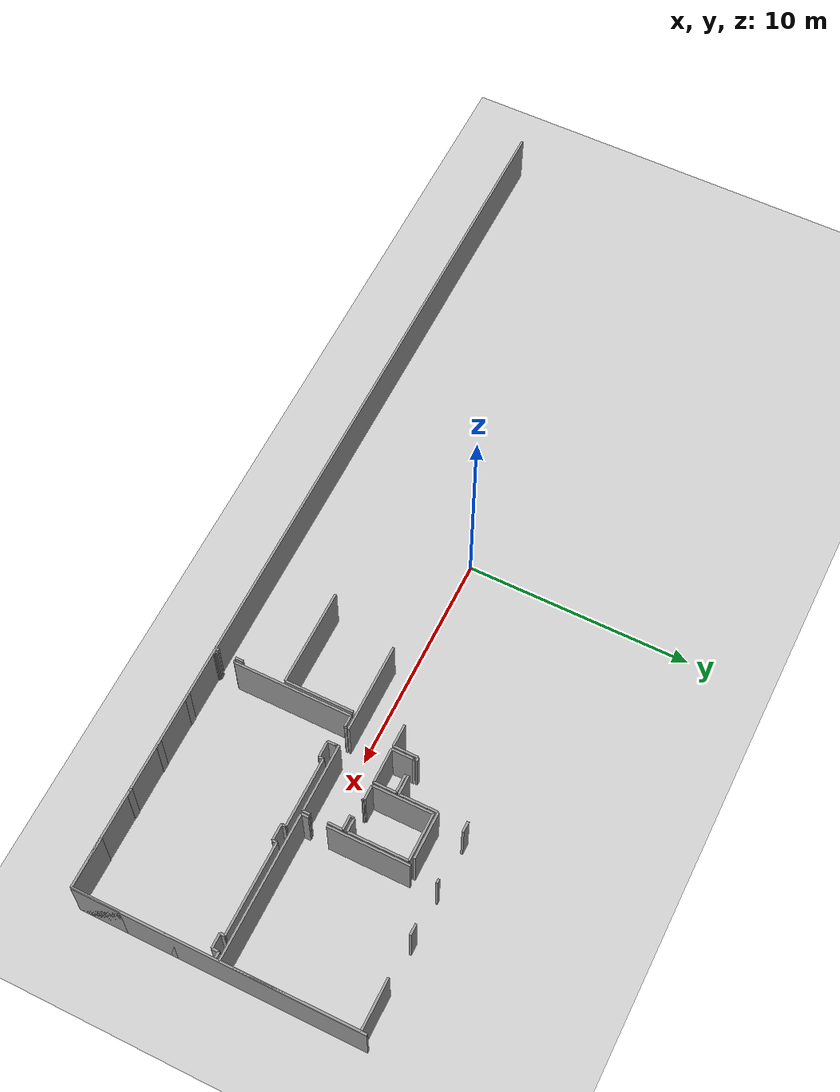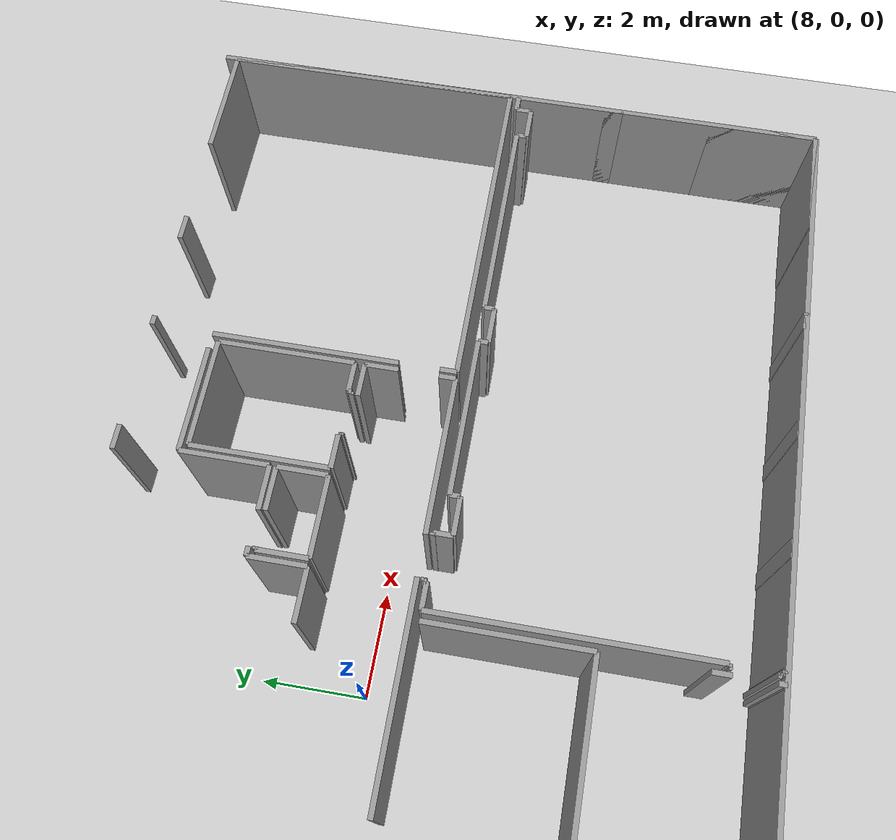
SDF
<sdf version="1.6">
 <world name="default">
  <model name="ground_plane">
   <static>1</static>
   <link name="link">
    <collision name="collision">
     <geometry><plane><normal>0 0 1</normal><size>100 100</size></plane></geometry>
     <surface><friction><ode><mu>100</mu><mu2>50</mu2></ode></friction></surface>
    </collision>
    <visual name="visual">
     <cast_shadows>0</cast_shadows>
     <geometry><plane><normal>0 0 1</normal><size>100 100</size></plane></geometry>
     <material>
      <script><uri>file://media/materials/scripts/gazebo.material</uri><name>Gazebo/Grey</name></script>
     </material>
    </visual>
   </link>
  </model>
  <model name="0510025537_Layout1_PLAN1">
   <static>1</static>
   <link name="Wall_243">
    <collision name="Wall_243_Collision">
     <geometry><box><size>0.354197115079 0.1 2.5</size></box></geometry>
     <pose>0.17709855754 0 1.25 0 0 0</pose>
    </collision>
    <visual name="Wall_243_Visual">
     <pose>0.17709855754 0 1.25 0 0 0</pose>
     <geometry><box><size>0.354197115079 0.1 2.5</size></box></geometry>
     <material>
      <script><uri>file://media/materials/scripts/gazebo.material</uri><name>Gazebo/Grey</name></script>
      <ambient>1 1 1 1</ambient>
     </material>
    </visual>
    <pose>29.4905636398 -11.3620003813 0 0 0 -1.57079632679</pose>
   </link>
   <link name="Wall_244">
    <collision name="Wall_244_Collision">
     <geometry><box><size>0.148757704772 0.1 2.5</size></box></geometry>
     <pose>0.0743788523861 0 1.25 0 0 0</pose>
    </collision>
    <visual name="Wall_244_Visual">
     <pose>0.0743788523861 0 1.25 0 0 0</pose>
     <geometry><box><size>0.148757704772 0.1 2.5</size></box></geometry>
     <material>
      <script><uri>file://media/materials/scripts/gazebo.material</uri><name>Gazebo/Grey</name></script>
      <ambient>1 1 1 1</ambient>
     </material>
    </visual>
    <pose>29.4905636398 -12.4839423016 0 0 0 -1.57079632679</pose>
   </link>
   <link name="Wall_245">
    <collision name="Wall_245_Collision">
     <geometry><box><size>0.0817182436297 0.1 2.5</size></box></geometry>
     <pose>0.0408591218148 0 1.25 0 0 0</pose>
    </collision>
    <visual name="Wall_245_Visual">
     <pose>0.0408591218148 0 1.25 0 0 0</pose>
     <geometry><box><size>0.0817182436297 0.1 2.5</size></box></geometry>
     <material>
      <script><uri>file://media/materials/scripts/gazebo.material</uri><name>Gazebo/Grey</name></script>
      <ambient>1 1 1 1</ambient>
     </material>
    </visual>
    <pose>29.4905636398 -12.6327000064 0 0 0 3.14159265359</pose>
   </link>
   <link name="Wall_254">
    <collision name="Wall_254_Collision">
     <geometry><box><size>0.508928004067 0.1 2.5</size></box></geometry>
     <pose>0.254464002033 0 1.25 0 0 0</pose>
    </collision>
    <visual name="Wall_254_Visual">
     <pose>0.254464002033 0 1.25 0 0 0</pose>
     <geometry><box><size>0.508928004067 0.1 2.5</size></box></geometry>
     <material>
      <script><uri>file://media/materials/scripts/gazebo.material</uri><name>Gazebo/Grey</name></script>
      <ambient>1 1 1 1</ambient>
     </material>
    </visual>
    <pose>29.6790366652 -6.37496346191 0 0 0 0.0</pose>
   </link>
   <link name="Wall_255">
    <collision name="Wall_255_Collision">
     <geometry><box><size>0.0549660036856 0.1 2.5</size></box></geometry>
     <pose>0.0274830018428 0 1.25 0 0 0</pose>
    </collision>
    <visual name="Wall_255_Visual">
     <pose>0.0274830018428 0 1.25 0 0 0</pose>
     <geometry><box><size>0.0549660036856 0.1 2.5</size></box></geometry>
     <material>
      <script><uri>file://media/materials/scripts/gazebo.material</uri><name>Gazebo/Grey</name></script>
      <ambient>1 1 1 1</ambient>
     </material>
    </visual>
    <pose>30.1879646693 -6.37496346191 0 0 0 1.57079632679</pose>
   </link>
   <link name="Wall_256">
    <collision name="Wall_256_Collision">
     <geometry><box><size>0.0596682976425 0.1 2.5</size></box></geometry>
     <pose>0.0298341488213 0 1.25 0 0 0</pose>
    </collision>
    <visual name="Wall_256_Visual">
     <pose>0.0298341488213 0 1.25 0 0 0</pose>
     <geometry><box><size>0.0596682976425 0.1 2.5</size></box></geometry>
     <material>
      <script><uri>file://media/materials/scripts/gazebo.material</uri><name>Gazebo/Grey</name></script>
      <ambient>1 1 1 1</ambient>
     </material>
    </visual>
    <pose>30.1879646693 -6.31999745822 0 0 0 0.0</pose>
   </link>
   <link name="Wall_257">
    <collision name="Wall_257_Collision">
     <geometry><box><size>0.0533773908623 0.1 2.5</size></box></geometry>
     <pose>0.0266886954311 0 1.25 0 0 0</pose>
    </collision>
    <visual name="Wall_257_Visual">
     <pose>0.0266886954311 0 1.25 0 0 0</pose>
     <geometry><box><size>0.0533773908623 0.1 2.5</size></box></geometry>
     <material>
      <script><uri>file://media/materials/scripts/gazebo.material</uri><name>Gazebo/Grey</name></script>
      <ambient>1 1 1 1</ambient>
     </material>
    </visual>
    <pose>31.0141704264 -6.31999745822 0 0 0 0.0</pose>
   </link>
   <link name="Wall_258">
    <collision name="Wall_258_Collision">
     <geometry><box><size>0.364427781661 0.1 2.5</size></box></geometry>
     <pose>0.182213890831 0 1.25 0 0 0</pose>
    </collision>
    <visual name="Wall_258_Visual">
     <pose>0.182213890831 0 1.25 0 0 0</pose>
     <geometry><box><size>0.364427781661 0.1 2.5</size></box></geometry>
     <material>
      <script><uri>file://media/materials/scripts/gazebo.material</uri><name>Gazebo/Grey</name></script>
      <ambient>1 1 1 1</ambient>
     </material>
    </visual>
    <pose>31.0675478172 -6.31999745822 0 0 0 -1.57079632679</pose>
   </link>
   <link name="Wall_259">
    <collision name="Wall_259_Collision">
     <geometry><box><size>0.737942428671 0.1 2.5</size></box></geometry>
     <pose>0.368971214336 0 1.25 0 0 0</pose>
    </collision>
    <visual name="Wall_259_Visual">
     <pose>0.368971214336 0 1.25 0 0 0</pose>
     <geometry><box><size>0.737942428671 0.1 2.5</size></box></geometry>
     <material>
      <script><uri>file://media/materials/scripts/gazebo.material</uri><name>Gazebo/Grey</name></script>
      <ambient>1 1 1 1</ambient>
     </material>
    </visual>
    <pose>31.0675478172 -6.68442523988 0 0 0 0.0</pose>
   </link>
   <link name="Wall_260">
    <collision name="Wall_260_Collision">
     <geometry><box><size>0.197496346191 0.1 2.5</size></box></geometry>
     <pose>0.0987481730953 0 1.25 0 0 0</pose>
    </collision>
    <visual name="Wall_260_Visual">
     <pose>0.0987481730953 0 1.25 0 0 0</pose>
     <geometry><box><size>0.197496346191 0.1 2.5</size></box></geometry>
     <material>
      <script><uri>file://media/materials/scripts/gazebo.material</uri><name>Gazebo/Grey</name></script>
      <ambient>1 1 1 1</ambient>
     </material>
    </visual>
    <pose>31.8054902459 -6.68442523988 0 0 0 1.57079632679</pose>
   </link>
   <link name="Wall_261">
    <collision name="Wall_261_Collision">
     <geometry><box><size>3.11190188727 0.1 2.5</size></box></geometry>
     <pose>1.55595094364 0 1.25 0 0 0</pose>
    </collision>
    <visual name="Wall_261_Visual">
     <pose>1.55595094364 0 1.25 0 0 0</pose>
     <geometry><box><size>3.11190188727 0.1 2.5</size></box></geometry>
     <material>
      <script><uri>file://media/materials/scripts/gazebo.material</uri><name>Gazebo/Grey</name></script>
      <ambient>1 1 1 1</ambient>
     </material>
    </visual>
    <pose>31.8054902459 -6.48692889369 0 0 0 0.0</pose>
   </link>
   <link name="Wall_262">
    <collision name="Wall_262_Collision">
     <geometry><box><size>0.191141894897 0.1 2.5</size></box></geometry>
     <pose>0.0955709474487 0 1.25 0 0 0</pose>
    </collision>
    <visual name="Wall_262_Visual">
     <pose>0.0955709474487 0 1.25 0 0 0</pose>
     <geometry><box><size>0.191141894897 0.1 2.5</size></box></geometry>
     <material>
      <script><uri>file://media/materials/scripts/gazebo.material</uri><name>Gazebo/Grey</name></script>
      <ambient>1 1 1 1</ambient>
     </material>
    </visual>
    <pose>34.9173921332 -6.48692889369 0 0 0 -1.57079632679</pose>
   </link>
   <link name="Wall_263">
    <collision name="Wall_263_Collision">
     <geometry><box><size>0.737370528055 0.1 2.5</size></box></geometry>
     <pose>0.368685264027 0 1.25 0 0 0</pose>
    </collision>
    <visual name="Wall_263_Visual">
     <pose>0.368685264027 0 1.25 0 0 0</pose>
     <geometry><box><size>0.737370528055 0.1 2.5</size></box></geometry>
     <material>
      <script><uri>file://media/materials/scripts/gazebo.material</uri><name>Gazebo/Grey</name></script>
      <ambient>1 1 1 1</ambient>
     </material>
    </visual>
    <pose>34.9173921332 -6.67807078859 0 0 0 0.0</pose>
   </link>
   <link name="Wall_264">
    <collision name="Wall_264_Collision">
     <geometry><box><size>0.194763932134 0.1 2.5</size></box></geometry>
     <pose>0.0973819660672 0 1.25 0 0 0</pose>
    </collision>
    <visual name="Wall_264_Visual">
     <pose>0.0973819660672 0 1.25 0 0 0</pose>
     <geometry><box><size>0.194763932134 0.1 2.5</size></box></geometry>
     <material>
      <script><uri>file://media/materials/scripts/gazebo.material</uri><name>Gazebo/Grey</name></script>
      <ambient>1 1 1 1</ambient>
     </material>
    </visual>
    <pose>35.6547626612 -6.67807078859 0 0 0 1.57079632679</pose>
   </link>
   <link name="Wall_265">
    <collision name="Wall_265_Collision">
     <geometry><box><size>4.1130456885 0.1 2.5</size></box></geometry>
     <pose>2.05652284425 0 1.25 0 0 0</pose>
    </collision>
    <visual name="Wall_265_Visual">
     <pose>2.05652284425 0 1.25 0 0 0</pose>
     <geometry><box><size>4.1130456885 0.1 2.5</size></box></geometry>
     <material>
      <script><uri>file://media/materials/scripts/gazebo.material</uri><name>Gazebo/Grey</name></script>
      <ambient>1 1 1 1</ambient>
     </material>
    </visual>
    <pose>35.6547626612 -6.48330685645 0 0 0 0.0</pose>
   </link>
   <link name="Wall_266">
    <collision name="Wall_266_Collision">
     <geometry><box><size>0.204104975535 0.1 2.5</size></box></geometry>
     <pose>0.102052487768 0 1.25 0 0 0</pose>
    </collision>
    <visual name="Wall_266_Visual">
     <pose>0.102052487768 0 1.25 0 0 0</pose>
     <geometry><box><size>0.204104975535 0.1 2.5</size></box></geometry>
     <material>
      <script><uri>file://media/materials/scripts/gazebo.material</uri><name>Gazebo/Grey</name></script>
      <ambient>1 1 1 1</ambient>
     </material>
    </visual>
    <pose>39.7678083497 -6.48330685645 0 0 0 -1.57079632679</pose>
   </link>
   <link name="Wall_267">
    <collision name="Wall_267_Collision">
     <geometry><box><size>0.643960094046 0.1 2.5</size></box></geometry>
     <pose>0.321980047023 0 1.25 0 0 0</pose>
    </collision>
    <visual name="Wall_267_Visual">
     <pose>0.321980047023 0 1.25 0 0 0</pose>
     <geometry><box><size>0.643960094046 0.1 2.5</size></box></geometry>
     <material>
      <script><uri>file://media/materials/scripts/gazebo.material</uri><name>Gazebo/Grey</name></script>
      <ambient>1 1 1 1</ambient>
     </material>
    </visual>
    <pose>39.7678083497 -6.68741183199 0 0 0 0.0</pose>
   </link>
   <link name="Wall_268">
    <collision name="Wall_268_Collision">
     <geometry><box><size>0.307746076126 0.1 2.5</size></box></geometry>
     <pose>0.153873038063 0 1.25 0 0 0</pose>
    </collision>
    <visual name="Wall_268_Visual">
     <pose>0.153873038063 0 1.25 0 0 0</pose>
     <geometry><box><size>0.307746076126 0.1 2.5</size></box></geometry>
     <material>
      <script><uri>file://media/materials/scripts/gazebo.material</uri><name>Gazebo/Grey</name></script>
      <ambient>1 1 1 1</ambient>
     </material>
    </visual>
    <pose>40.4117684438 -6.68741183199 0 0 0 1.57079632679</pose>
   </link>
   <link name="Wall_269">
    <collision name="Wall_269_Collision">
     <geometry><box><size>0.313846349368 0.1 2.5</size></box></geometry>
     <pose>0.156923174684 0 1.25 0 0 0</pose>
    </collision>
    <visual name="Wall_269_Visual">
     <pose>0.156923174684 0 1.25 0 0 0</pose>
     <geometry><box><size>0.313846349368 0.1 2.5</size></box></geometry>
     <material>
      <script><uri>file://media/materials/scripts/gazebo.material</uri><name>Gazebo/Grey</name></script>
      <ambient>1 1 1 1</ambient>
     </material>
    </visual>
    <pose>40.4117684438 -6.37966575586 0 0 0 0.0</pose>
   </link>
   <link name="Wall_270">
    <collision name="Wall_270_Collision">
     <geometry><box><size>0.379932642816 0.1 2.5</size></box></geometry>
     <pose>0.189966321408 0 1.25 0 0 0</pose>
    </collision>
    <visual name="Wall_270_Visual">
     <pose>0.189966321408 0 1.25 0 0 0</pose>
     <geometry><box><size>0.379932642816 0.1 2.5</size></box></geometry>
     <material>
      <script><uri>file://media/materials/scripts/gazebo.material</uri><name>Gazebo/Grey</name></script>
      <ambient>1 1 1 1</ambient>
     </material>
    </visual>
    <pose>40.7256147932 -8.22055029548 0 0 0 -1.57079632679</pose>
   </link>
   <link name="Wall_271">
    <collision name="Wall_271_Collision">
     <geometry><box><size>2.15854355976 0.1 2.5</size></box></geometry>
     <pose>1.07927177988 0 1.25 0 0 0</pose>
    </collision>
    <visual name="Wall_271_Visual">
     <pose>1.07927177988 0 1.25 0 0 0</pose>
     <geometry><box><size>2.15854355976 0.1 2.5</size></box></geometry>
     <material>
      <script><uri>file://media/materials/scripts/gazebo.material</uri><name>Gazebo/Grey</name></script>
      <ambient>1 1 1 1</ambient>
     </material>
    </visual>
    <pose>40.7256147932 -10.4599224757 0 0 0 -1.57079632679</pose>
   </link>
   <link name="Wall_272">
    <collision name="Wall_272_Collision">
     <geometry><box><size>2.21338247442 0.1 2.5</size></box></geometry>
     <pose>1.10669123721 0 1.25 0 0 0</pose>
    </collision>
    <visual name="Wall_272_Visual">
     <pose>1.10669123721 0 1.25 0 0 0</pose>
     <geometry><box><size>2.21338247442 0.1 2.5</size></box></geometry>
     <material>
      <script><uri>file://media/materials/scripts/gazebo.material</uri><name>Gazebo/Grey</name></script>
      <ambient>1 1 1 1</ambient>
     </material>
    </visual>
    <pose>40.7256147932 -12.6184660355 0 0 0 3.14159265359</pose>
   </link>
   <link name="Wall_273">
    <collision name="Wall_273_Collision">
     <geometry><box><size>0.352862680308 0.1 2.5</size></box></geometry>
     <pose>0.176431340154 0 1.25 0 0 0</pose>
    </collision>
    <visual name="Wall_273_Visual">
     <pose>0.176431340154 0 1.25 0 0 0</pose>
     <geometry><box><size>0.352862680308 0.1 2.5</size></box></geometry>
     <material>
      <script><uri>file://media/materials/scripts/gazebo.material</uri><name>Gazebo/Grey</name></script>
      <ambient>1 1 1 1</ambient>
     </material>
    </visual>
    <pose>36.5882315562 -12.6184660355 0 0 0 3.14159265359</pose>
   </link>
   <link name="Wall_274">
    <collision name="Wall_274_Collision">
     <geometry><box><size>0.359916121243 0.1 2.5</size></box></geometry>
     <pose>0.179958060621 0 1.25 0 0 0</pose>
    </collision>
    <visual name="Wall_274_Visual">
     <pose>0.179958060621 0 1.25 0 0 0</pose>
     <geometry><box><size>0.359916121243 0.1 2.5</size></box></geometry>
     <material>
      <script><uri>file://media/materials/scripts/gazebo.material</uri><name>Gazebo/Grey</name></script>
      <ambient>1 1 1 1</ambient>
     </material>
    </visual>
    <pose>34.3263010739 -12.6184660355 0 0 0 3.14159265359</pose>
   </link>
   <link name="Wall_275">
    <collision name="Wall_275_Collision">
     <geometry><box><size>0.356039905954 0.1 2.5</size></box></geometry>
     <pose>0.178019952977 0 1.25 0 0 0</pose>
    </collision>
    <visual name="Wall_275_Visual">
     <pose>0.178019952977 0 1.25 0 0 0</pose>
     <geometry><box><size>0.356039905954 0.1 2.5</size></box></geometry>
     <material>
      <script><uri>file://media/materials/scripts/gazebo.material</uri><name>Gazebo/Grey</name></script>
      <ambient>1 1 1 1</ambient>
     </material>
    </visual>
    <pose>32.0414945669 -12.6184660355 0 0 0 3.14159265359</pose>
   </link>
   <link name="Wall_276">
    <collision name="Wall_276_Collision">
     <geometry><box><size>0.0927749888797 0.1 2.5</size></box></geometry>
     <pose>0.0463874944399 0 1.25 0 0 0</pose>
    </collision>
    <visual name="Wall_276_Visual">
     <pose>0.0463874944399 0 1.25 0 0 0</pose>
     <geometry><box><size>0.0927749888797 0.1 2.5</size></box></geometry>
     <material>
      <script><uri>file://media/materials/scripts/gazebo.material</uri><name>Gazebo/Grey</name></script>
      <ambient>1 1 1 1</ambient>
     </material>
    </visual>
    <pose>29.7672999936 -12.6184660355 0 0 0 3.14159265359</pose>
   </link>
   <link name="Wall_277">
    <collision name="Wall_277_Collision">
     <geometry><box><size>0.0827349558366 0.1 2.5</size></box></geometry>
     <pose>0.0413674779183 0 1.25 0 0 0</pose>
    </collision>
    <visual name="Wall_277_Visual">
     <pose>0.0413674779183 0 1.25 0 0 0</pose>
     <geometry><box><size>0.0827349558366 0.1 2.5</size></box></geometry>
     <material>
      <script><uri>file://media/materials/scripts/gazebo.material</uri><name>Gazebo/Grey</name></script>
      <ambient>1 1 1 1</ambient>
     </material>
    </visual>
    <pose>29.6745250048 -12.6184660355 0 0 0 1.57079632679</pose>
   </link>
   <link name="Wall_278">
    <collision name="Wall_278_Collision">
     <geometry><box><size>0.0519158670649 0.1 2.5</size></box></geometry>
     <pose>0.0259579335324 0 1.25 0 0 0</pose>
    </collision>
    <visual name="Wall_278_Visual">
     <pose>0.0259579335324 0 1.25 0 0 0</pose>
     <geometry><box><size>0.0519158670649 0.1 2.5</size></box></geometry>
     <material>
      <script><uri>file://media/materials/scripts/gazebo.material</uri><name>Gazebo/Grey</name></script>
      <ambient>1 1 1 1</ambient>
     </material>
    </visual>
    <pose>29.6745250048 -12.5357310796 0 0 0 3.14159265359</pose>
   </link>
   <link name="Wall_279">
    <collision name="Wall_279_Collision">
     <geometry><box><size>0.0669123721167 0.1 2.5</size></box></geometry>
     <pose>0.0334561860583 0 1.25 0 0 0</pose>
    </collision>
    <visual name="Wall_279_Visual">
     <pose>0.0334561860583 0 1.25 0 0 0</pose>
     <geometry><box><size>0.0669123721167 0.1 2.5</size></box></geometry>
     <material>
      <script><uri>file://media/materials/scripts/gazebo.material</uri><name>Gazebo/Grey</name></script>
      <ambient>1 1 1 1</ambient>
     </material>
    </visual>
    <pose>29.6226091377 -12.5357310796 0 0 0 1.57079632679</pose>
   </link>
   <link name="Wall_280">
    <collision name="Wall_280_Collision">
     <geometry><box><size>0.0560462604054 0.1 2.5</size></box></geometry>
     <pose>0.0280231302027 0 1.25 0 0 0</pose>
    </collision>
    <visual name="Wall_280_Visual">
     <pose>0.0280231302027 0 1.25 0 0 0</pose>
     <geometry><box><size>0.0560462604054 0.1 2.5</size></box></geometry>
     <material>
      <script><uri>file://media/materials/scripts/gazebo.material</uri><name>Gazebo/Grey</name></script>
      <ambient>1 1 1 1</ambient>
     </material>
    </visual>
    <pose>29.6226091377 -11.7054584737 0 0 0 1.57079632679</pose>
   </link>
   <link name="Wall_281">
    <collision name="Wall_281_Collision">
     <geometry><box><size>0.0531867573235 0.1 2.5</size></box></geometry>
     <pose>0.0265933786618 0 1.25 0 0 0</pose>
    </collision>
    <visual name="Wall_281_Visual">
     <pose>0.0265933786618 0 1.25 0 0 0</pose>
     <geometry><box><size>0.0531867573235 0.1 2.5</size></box></geometry>
     <material>
      <script><uri>file://media/materials/scripts/gazebo.material</uri><name>Gazebo/Grey</name></script>
      <ambient>1 1 1 1</ambient>
     </material>
    </visual>
    <pose>29.6226091377 -11.6494122133 0 0 0 0.0</pose>
   </link>
   <link name="Wall_282">
    <collision name="Wall_282_Collision">
     <geometry><box><size>5.27444974696 0.1 2.5</size></box></geometry>
     <pose>2.63722487348 0 1.25 0 0 0</pose>
    </collision>
    <visual name="Wall_282_Visual">
     <pose>2.63722487348 0 1.25 0 0 0</pose>
     <geometry><box><size>5.27444974696 0.1 2.5</size></box></geometry>
     <material>
      <script><uri>file://media/materials/scripts/gazebo.material</uri><name>Gazebo/Grey</name></script>
      <ambient>1 1 1 1</ambient>
     </material>
    </visual>
    <pose>29.675795895 -11.6494122133 0 0 0 1.57018189865</pose>
   </link>
   <link name="Wall_290">
    <collision name="Wall_290_Collision">
     <geometry><box><size>3.06157463303 0.1 2.5</size></box></geometry>
     <pose>1.53078731652 0 1.25 0 0 0</pose>
    </collision>
    <visual name="Wall_290_Visual">
     <pose>1.53078731652 0 1.25 0 0 0</pose>
     <geometry><box><size>3.06157463303 0.1 2.5</size></box></geometry>
     <material>
      <script><uri>file://media/materials/scripts/gazebo.material</uri><name>Gazebo/Grey</name></script>
      <ambient>1 1 1 1</ambient>
     </material>
    </visual>
    <pose>29.4942492216 -6.37229459236 0 0 0 -1.57079632679</pose>
   </link>
   <link name="Wall_291">
    <collision name="Wall_291_Collision">
     <geometry><box><size>4.36716578958 0.1 2.5</size></box></geometry>
     <pose>2.18358289479 0 1.25 0 0 0</pose>
    </collision>
    <visual name="Wall_291_Visual">
     <pose>2.18358289479 0 1.25 0 0 0</pose>
     <geometry><box><size>4.36716578958 0.1 2.5</size></box></geometry>
     <material>
      <script><uri>file://media/materials/scripts/gazebo.material</uri><name>Gazebo/Grey</name></script>
      <ambient>1 1 1 1</ambient>
     </material>
    </visual>
    <pose>29.4942492216 -9.43386922539 0 0 0 3.13999209622</pose>
   </link>
   <link name="Wall_292">
    <collision name="Wall_292_Collision">
     <geometry><box><size>2.6665882951 0.1 2.5</size></box></geometry>
     <pose>1.33329414755 0 1.25 0 0 0</pose>
    </collision>
    <visual name="Wall_292_Visual">
     <pose>1.33329414755 0 1.25 0 0 0</pose>
     <geometry><box><size>2.6665882951 0.1 2.5</size></box></geometry>
     <material>
      <script><uri>file://media/materials/scripts/gazebo.material</uri><name>Gazebo/Grey</name></script>
      <ambient>1 1 1 1</ambient>
     </material>
    </visual>
    <pose>31.9343585181 -4.27596111076 0 0 0 1.57079632679</pose>
   </link>
   <link name="Wall_293">
    <collision name="Wall_293_Collision">
     <geometry><box><size>2.13407892229 0.1 2.5</size></box></geometry>
     <pose>1.06703946114 0 1.25 0 0 0</pose>
    </collision>
    <visual name="Wall_293_Visual">
     <pose>1.06703946114 0 1.25 0 0 0</pose>
     <geometry><box><size>2.13407892229 0.1 2.5</size></box></geometry>
     <material>
      <script><uri>file://media/materials/scripts/gazebo.material</uri><name>Gazebo/Grey</name></script>
      <ambient>1 1 1 1</ambient>
     </material>
    </visual>
    <pose>31.9343585181 -1.60937281566 0 0 0 0.0</pose>
   </link>
   <link name="Wall_294">
    <collision name="Wall_294_Collision">
     <geometry><box><size>2.65769206329 0.1 2.5</size></box></geometry>
     <pose>1.32884603165 0 1.25 0 0 0</pose>
    </collision>
    <visual name="Wall_294_Visual">
     <pose>1.32884603165 0 1.25 0 0 0</pose>
     <geometry><box><size>2.65769206329 0.1 2.5</size></box></geometry>
     <material>
      <script><uri>file://media/materials/scripts/gazebo.material</uri><name>Gazebo/Grey</name></script>
      <ambient>1 1 1 1</ambient>
     </material>
    </visual>
    <pose>34.0684374404 -1.60937281566 0 0 0 -1.57079632679</pose>
   </link>
   <link name="Wall_295">
    <collision name="Wall_295_Collision">
     <geometry><box><size>0.588231556205 0.1 2.5</size></box></geometry>
     <pose>0.294115778103 0 1.25 0 0 0</pose>
    </collision>
    <visual name="Wall_295_Visual">
     <pose>0.294115778103 0 1.25 0 0 0</pose>
     <geometry><box><size>0.588231556205 0.1 2.5</size></box></geometry>
     <material>
      <script><uri>file://media/materials/scripts/gazebo.material</uri><name>Gazebo/Grey</name></script>
      <ambient>1 1 1 1</ambient>
     </material>
    </visual>
    <pose>34.0684374404 -4.26706487895 0 0 0 3.14159265359</pose>
   </link>
   <link name="Wall_296">
    <collision name="Wall_296_Collision">
     <geometry><box><size>0.0596682976425 0.1 2.5</size></box></geometry>
     <pose>0.0298341488212 0 1.25 0 0 0</pose>
    </collision>
    <visual name="Wall_296_Visual">
     <pose>0.0298341488212 0 1.25 0 0 0</pose>
     <geometry><box><size>0.0596682976425 0.1 2.5</size></box></geometry>
     <material>
      <script><uri>file://media/materials/scripts/gazebo.material</uri><name>Gazebo/Grey</name></script>
      <ambient>1 1 1 1</ambient>
     </material>
    </visual>
    <pose>33.4802058842 -4.26706487895 0 0 0 -1.57079632679</pose>
   </link>
   <link name="Wall_297">
    <collision name="Wall_297_Collision">
     <geometry><box><size>0.0597318421554 0.1 2.5</size></box></geometry>
     <pose>0.0298659210777 0 1.25 0 0 0</pose>
    </collision>
    <visual name="Wall_297_Visual">
     <pose>0.0298659210777 0 1.25 0 0 0</pose>
     <geometry><box><size>0.0597318421554 0.1 2.5</size></box></geometry>
     <material>
      <script><uri>file://media/materials/scripts/gazebo.material</uri><name>Gazebo/Grey</name></script>
      <ambient>1 1 1 1</ambient>
     </material>
    </visual>
    <pose>33.4802058842 -4.32673317659 0 0 0 3.14159265359</pose>
   </link>
   <link name="Wall_298">
    <collision name="Wall_298_Collision">
     <geometry><box><size>0.0486750969054 0.1 2.5</size></box></geometry>
     <pose>0.0243375484527 0 1.25 0 0 0</pose>
    </collision>
    <visual name="Wall_298_Visual">
     <pose>0.0243375484527 0 1.25 0 0 0</pose>
     <geometry><box><size>0.0486750969054 0.1 2.5</size></box></geometry>
     <material>
      <script><uri>file://media/materials/scripts/gazebo.material</uri><name>Gazebo/Grey</name></script>
      <ambient>1 1 1 1</ambient>
     </material>
    </visual>
    <pose>32.6449768063 -4.32673317659 0 0 0 3.14159265359</pose>
   </link>
   <link name="Wall_299">
    <collision name="Wall_299_Collision">
     <geometry><box><size>0.0535044798882 0.1 2.5</size></box></geometry>
     <pose>0.0267522399441 0 1.25 0 0 0</pose>
    </collision>
    <visual name="Wall_299_Visual">
     <pose>0.0267522399441 0 1.25 0 0 0</pose>
     <geometry><box><size>0.0535044798882 0.1 2.5</size></box></geometry>
     <material>
      <script><uri>file://media/materials/scripts/gazebo.material</uri><name>Gazebo/Grey</name></script>
      <ambient>1 1 1 1</ambient>
     </material>
    </visual>
    <pose>32.5963017093 -4.32673317659 0 0 0 1.57079632679</pose>
   </link>
   <link name="Wall_300">
    <collision name="Wall_300_Collision">
     <geometry><box><size>0.661948830704 0.1 2.5</size></box></geometry>
     <pose>0.330974415352 0 1.25 0 0 0</pose>
    </collision>
    <visual name="Wall_300_Visual">
     <pose>0.330974415352 0 1.25 0 0 0</pose>
     <geometry><box><size>0.661948830704 0.1 2.5</size></box></geometry>
     <material>
      <script><uri>file://media/materials/scripts/gazebo.material</uri><name>Gazebo/Grey</name></script>
      <ambient>1 1 1 1</ambient>
     </material>
    </visual>
    <pose>32.5963017093 -4.2732286967 0 0 0 -3.13746480913</pose>
   </link>
   <link name="Wall_306">
    <collision name="Wall_306_Collision">
     <geometry><box><size>0.975980174112 0.1 2.5</size></box></geometry>
     <pose>0.487990087056 0 1.25 0 0 0</pose>
    </collision>
    <visual name="Wall_306_Visual">
     <pose>0.487990087056 0 1.25 0 0 0</pose>
     <geometry><box><size>0.975980174112 0.1 2.5</size></box></geometry>
     <material>
      <script><uri>file://media/materials/scripts/gazebo.material</uri><name>Gazebo/Grey</name></script>
      <ambient>1 1 1 1</ambient>
     </material>
    </visual>
    <pose>30.2328906399 -4.27678718943 0 0 0 1.57079632679</pose>
   </link>
   <link name="Wall_307">
    <collision name="Wall_307_Collision">
     <geometry><box><size>0.0547753701468 0.1 2.5</size></box></geometry>
     <pose>0.0273876850734 0 1.25 0 0 0</pose>
    </collision>
    <visual name="Wall_307_Visual">
     <pose>0.0273876850734 0 1.25 0 0 0</pose>
     <geometry><box><size>0.0547753701468 0.1 2.5</size></box></geometry>
     <material>
      <script><uri>file://media/materials/scripts/gazebo.material</uri><name>Gazebo/Grey</name></script>
      <ambient>1 1 1 1</ambient>
     </material>
    </visual>
    <pose>30.2328906399 -3.30080701531 0 0 0 0.0</pose>
   </link>
   <link name="Wall_308">
    <collision name="Wall_308_Collision">
     <geometry><box><size>0.838152125564 0.1 2.5</size></box></geometry>
     <pose>0.419076062782 0 1.25 0 0 0</pose>
    </collision>
    <visual name="Wall_308_Visual">
     <pose>0.419076062782 0 1.25 0 0 0</pose>
     <geometry><box><size>0.838152125564 0.1 2.5</size></box></geometry>
     <material>
      <script><uri>file://media/materials/scripts/gazebo.material</uri><name>Gazebo/Grey</name></script>
      <ambient>1 1 1 1</ambient>
     </material>
    </visual>
    <pose>30.9583147995 -3.30080701531 0 0 0 0.0</pose>
   </link>
   <link name="Wall_309">
    <collision name="Wall_309_Collision">
     <geometry><box><size>0.971087246616 0.1 2.5</size></box></geometry>
     <pose>0.485543623308 0 1.25 0 0 0</pose>
    </collision>
    <visual name="Wall_309_Visual">
     <pose>0.485543623308 0 1.25 0 0 0</pose>
     <geometry><box><size>0.971087246616 0.1 2.5</size></box></geometry>
     <material>
      <script><uri>file://media/materials/scripts/gazebo.material</uri><name>Gazebo/Grey</name></script>
      <ambient>1 1 1 1</ambient>
     </material>
    </visual>
    <pose>31.7964669251 -3.30080701531 0 0 0 -1.57079632679</pose>
   </link>
   <link name="Wall_310">
    <collision name="Wall_310_Collision">
     <geometry><box><size>1.56358394093 0.1 2.5</size></box></geometry>
     <pose>0.781791970466 0 1.25 0 0 0</pose>
    </collision>
    <visual name="Wall_310_Visual">
     <pose>0.781791970466 0 1.25 0 0 0</pose>
     <geometry><box><size>1.56358394093 0.1 2.5</size></box></geometry>
     <material>
      <script><uri>file://media/materials/scripts/gazebo.material</uri><name>Gazebo/Grey</name></script>
      <ambient>1 1 1 1</ambient>
     </material>
    </visual>
    <pose>31.7964669251 -4.27189426193 0 0 0 -3.13846334575</pose>
   </link>
   <link name="Wall_315">
    <collision name="Wall_315_Collision">
     <geometry><box><size>0.480460062274 0.1 2.5</size></box></geometry>
     <pose>0.240230031137 0 1.25 0 0 0</pose>
    </collision>
    <visual name="Wall_315_Visual">
     <pose>0.240230031137 0 1.25 0 0 0</pose>
     <geometry><box><size>0.480460062274 0.1 2.5</size></box></geometry>
     <material>
      <script><uri>file://media/materials/scripts/gazebo.material</uri><name>Gazebo/Grey</name></script>
      <ambient>1 1 1 1</ambient>
     </material>
    </visual>
    <pose>31.6248331957 -0.262368939442 0 0 0 0.0</pose>
   </link>
   <link name="Wall_316">
    <collision name="Wall_316_Collision">
     <geometry><box><size>2.10186185423 0.1 2.5</size></box></geometry>
     <pose>1.05093092711 0 1.25 0 0 0</pose>
    </collision>
    <visual name="Wall_316_Visual">
     <pose>1.05093092711 0 1.25 0 0 0</pose>
     <geometry><box><size>2.10186185423 0.1 2.5</size></box></geometry>
     <material>
      <script><uri>file://media/materials/scripts/gazebo.material</uri><name>Gazebo/Grey</name></script>
      <ambient>1 1 1 1</ambient>
     </material>
    </visual>
    <pose>33.9036029739 -1.46542543051 0 0 0 3.14159265359</pose>
   </link>
   <link name="Wall_317">
    <collision name="Wall_317_Collision">
     <geometry><box><size>1.71051661689 0.1 2.5</size></box></geometry>
     <pose>0.855258308445 0 1.25 0 0 0</pose>
    </collision>
    <visual name="Wall_317_Visual">
     <pose>0.855258308445 0 1.25 0 0 0</pose>
     <geometry><box><size>1.71051661689 0.1 2.5</size></box></geometry>
     <material>
      <script><uri>file://media/materials/scripts/gazebo.material</uri><name>Gazebo/Grey</name></script>
      <ambient>1 1 1 1</ambient>
     </material>
    </visual>
    <pose>31.8017411197 -1.46542543051 0 0 0 -1.57079632679</pose>
   </link>
   <link name="Wall_318">
    <collision name="Wall_318_Collision">
     <geometry><box><size>0.856071678211 0.1 2.5</size></box></geometry>
     <pose>0.428035839105 0 1.25 0 0 0</pose>
    </collision>
    <visual name="Wall_318_Visual">
     <pose>0.428035839105 0 1.25 0 0 0</pose>
     <geometry><box><size>0.856071678211 0.1 2.5</size></box></geometry>
     <material>
      <script><uri>file://media/materials/scripts/gazebo.material</uri><name>Gazebo/Grey</name></script>
      <ambient>1 1 1 1</ambient>
     </material>
    </visual>
    <pose>31.8017411197 -3.1759420474 0 0 0 3.14159265359</pose>
   </link>
   <link name="Wall_319">
    <collision name="Wall_319_Collision">
     <geometry><box><size>0.175764122768 0.1 2.5</size></box></geometry>
     <pose>0.087882061384 0 1.25 0 0 0</pose>
    </collision>
    <visual name="Wall_319_Visual">
     <pose>0.087882061384 0 1.25 0 0 0</pose>
     <geometry><box><size>0.175764122768 0.1 2.5</size></box></geometry>
     <material>
      <script><uri>file://media/materials/scripts/gazebo.material</uri><name>Gazebo/Grey</name></script>
      <ambient>1 1 1 1</ambient>
     </material>
    </visual>
    <pose>30.2713986147 -3.1759420474 0 0 0 3.14159265359</pose>
   </link>
   <link name="Wall_320">
    <collision name="Wall_320_Collision">
     <geometry><box><size>1.09970134079 0.1 2.5</size></box></geometry>
     <pose>0.549850670395 0 1.25 0 0 0</pose>
    </collision>
    <visual name="Wall_320_Visual">
     <pose>0.549850670395 0 1.25 0 0 0</pose>
     <geometry><box><size>1.09970134079 0.1 2.5</size></box></geometry>
     <material>
      <script><uri>file://media/materials/scripts/gazebo.material</uri><name>Gazebo/Grey</name></script>
      <ambient>1 1 1 1</ambient>
     </material>
    </visual>
    <pose>30.095634492 -3.1759420474 0 0 0 -1.57079632679</pose>
   </link>
   <link name="Wall_321">
    <collision name="Wall_321_Collision">
     <geometry><box><size>1.01391624833 0.1 2.5</size></box></geometry>
     <pose>0.506958124166 0 1.25 0 0 0</pose>
    </collision>
    <visual name="Wall_321_Visual">
     <pose>0.506958124166 0 1.25 0 0 0</pose>
     <geometry><box><size>1.01391624833 0.1 2.5</size></box></geometry>
     <material>
      <script><uri>file://media/materials/scripts/gazebo.material</uri><name>Gazebo/Grey</name></script>
      <ambient>1 1 1 1</ambient>
     </material>
    </visual>
    <pose>30.095634492 -4.27564338819 0 0 0 3.14159265359</pose>
   </link>
   <link name="Wall_325">
    <collision name="Wall_325_Collision">
     <geometry><box><size>0.32515727267 0.1 2.5</size></box></geometry>
     <pose>0.162578636335 0 1.25 0 0 0</pose>
    </collision>
    <visual name="Wall_325_Visual">
     <pose>0.162578636335 0 1.25 0 0 0</pose>
     <geometry><box><size>0.32515727267 0.1 2.5</size></box></geometry>
     <material>
      <script><uri>file://media/materials/scripts/gazebo.material</uri><name>Gazebo/Grey</name></script>
      <ambient>1 1 1 1</ambient>
     </material>
    </visual>
    <pose>34.208997903 -6.19748363729 0 0 0 1.57079632679</pose>
   </link>
   <link name="Wall_326">
    <collision name="Wall_326_Collision">
     <geometry><box><size>3.62081718244 0.1 2.5</size></box></geometry>
     <pose>1.81040859122 0 1.25 0 0 0</pose>
    </collision>
    <visual name="Wall_326_Visual">
     <pose>1.81040859122 0 1.25 0 0 0</pose>
     <geometry><box><size>3.62081718244 0.1 2.5</size></box></geometry>
     <material>
      <script><uri>file://media/materials/scripts/gazebo.material</uri><name>Gazebo/Grey</name></script>
      <ambient>1 1 1 1</ambient>
     </material>
    </visual>
    <pose>34.208997903 -5.08132426765 0 0 0 1.57079632679</pose>
   </link>
   <link name="Wall_327">
    <collision name="Wall_327_Collision">
     <geometry><box><size>0.182182118574 0.1 2.5</size></box></geometry>
     <pose>0.091091059287 0 1.25 0 0 0</pose>
    </collision>
    <visual name="Wall_327_Visual">
     <pose>0.091091059287 0 1.25 0 0 0</pose>
     <geometry><box><size>0.182182118574 0.1 2.5</size></box></geometry>
     <material>
      <script><uri>file://media/materials/scripts/gazebo.material</uri><name>Gazebo/Grey</name></script>
      <ambient>1 1 1 1</ambient>
     </material>
    </visual>
    <pose>34.208997903 -0.258422825189 0 0 0 0.0</pose>
   </link>
   <link name="Wall_328">
    <collision name="Wall_328_Collision">
     <geometry><box><size>0.505814322933 0.1 2.5</size></box></geometry>
     <pose>0.252907161467 0 1.25 0 0 0</pose>
    </collision>
    <visual name="Wall_328_Visual">
     <pose>0.252907161467 0 1.25 0 0 0</pose>
     <geometry><box><size>0.505814322933 0.1 2.5</size></box></geometry>
     <material>
      <script><uri>file://media/materials/scripts/gazebo.material</uri><name>Gazebo/Grey</name></script>
      <ambient>1 1 1 1</ambient>
     </material>
    </visual>
    <pose>36.1641354769 -0.258422825189 0 0 0 0.0</pose>
   </link>
   <link name="Wall_329">
    <collision name="Wall_329_Collision">
     <geometry><box><size>2.25252589439 0.1 2.5</size></box></geometry>
     <pose>1.12626294719 0 1.25 0 0 0</pose>
    </collision>
    <visual name="Wall_329_Visual">
     <pose>1.12626294719 0 1.25 0 0 0</pose>
     <geometry><box><size>2.25252589439 0.1 2.5</size></box></geometry>
     <material>
      <script><uri>file://media/materials/scripts/gazebo.material</uri><name>Gazebo/Grey</name></script>
      <ambient>1 1 1 1</ambient>
     </material>
    </visual>
    <pose>38.461714431 -0.258422825189 0 0 0 0.0</pose>
   </link>
   <link name="Wall_330">
    <collision name="Wall_330_Collision">
     <geometry><box><size>5.943508928 0.1 2.5</size></box></geometry>
     <pose>2.971754464 0 1.25 0 0 0</pose>
    </collision>
    <visual name="Wall_330_Visual">
     <pose>2.971754464 0 1.25 0 0 0</pose>
     <geometry><box><size>5.943508928 0.1 2.5</size></box></geometry>
     <material>
      <script><uri>file://media/materials/scripts/gazebo.material</uri><name>Gazebo/Grey</name></script>
      <ambient>1 1 1 1</ambient>
     </material>
    </visual>
    <pose>40.7142403253 -0.258422825189 0 0 0 -1.57079632679</pose>
   </link>
   <link name="Wall_331">
    <collision name="Wall_331_Collision">
     <geometry><box><size>6.50524394307 0.1 2.5</size></box></geometry>
     <pose>3.25262197153 0 1.25 0 0 0</pose>
    </collision>
    <visual name="Wall_331_Visual">
     <pose>3.25262197153 0 1.25 0 0 0</pose>
     <geometry><box><size>6.50524394307 0.1 2.5</size></box></geometry>
     <material>
      <script><uri>file://media/materials/scripts/gazebo.material</uri><name>Gazebo/Grey</name></script>
      <ambient>1 1 1 1</ambient>
     </material>
    </visual>
    <pose>40.7142403253 -6.20193175319 0 0 0 3.14090887965</pose>
   </link>
   <link name="Wall_396">
    <collision name="Wall_396_Collision">
     <geometry><box><size>0.654953294783 0.1 2.5</size></box></geometry>
     <pose>0.327476647391 0 1.25 0 0 0</pose>
    </collision>
    <visual name="Wall_396_Visual">
     <pose>0.327476647391 0 1.25 0 0 0</pose>
     <geometry><box><size>0.654953294783 0.1 2.5</size></box></geometry>
     <material>
      <script><uri>file://media/materials/scripts/gazebo.material</uri><name>Gazebo/Grey</name></script>
      <ambient>1 1 1 1</ambient>
     </material>
    </visual>
    <pose>33.4188218847 -4.4584609519 0 0 0 0.0</pose>
   </link>
   <link name="Wall_397">
    <collision name="Wall_397_Collision">
     <geometry><box><size>0.648471754464 0.1 2.5</size></box></geometry>
     <pose>0.324235877232 0 1.25 0 0 0</pose>
    </collision>
    <visual name="Wall_397_Visual">
     <pose>0.324235877232 0 1.25 0 0 0</pose>
     <geometry><box><size>0.648471754464 0.1 2.5</size></box></geometry>
     <material>
      <script><uri>file://media/materials/scripts/gazebo.material</uri><name>Gazebo/Grey</name></script>
      <ambient>1 1 1 1</ambient>
     </material>
    </visual>
    <pose>34.0737751795 -4.4584609519 0 0 0 -1.57079632679</pose>
   </link>
   <link name="Wall_398">
    <collision name="Wall_398_Collision">
     <geometry><box><size>0.318358009786 0.1 2.5</size></box></geometry>
     <pose>0.159179004893 0 1.25 0 0 0</pose>
    </collision>
    <visual name="Wall_398_Visual">
     <pose>0.159179004893 0 1.25 0 0 0</pose>
     <geometry><box><size>0.318358009786 0.1 2.5</size></box></geometry>
     <material>
      <script><uri>file://media/materials/scripts/gazebo.material</uri><name>Gazebo/Grey</name></script>
      <ambient>1 1 1 1</ambient>
     </material>
    </visual>
    <pose>34.0737751795 -5.88014233971 0 0 0 -1.57079632679</pose>
   </link>
   <link name="Wall_399">
    <collision name="Wall_399_Collision">
     <geometry><box><size>3.06170172206 0.1 2.5</size></box></geometry>
     <pose>1.53085086103 0 1.25 0 0 0</pose>
    </collision>
    <visual name="Wall_399_Visual">
     <pose>1.53085086103 0 1.25 0 0 0</pose>
     <geometry><box><size>3.06170172206 0.1 2.5</size></box></geometry>
     <material>
      <script><uri>file://media/materials/scripts/gazebo.material</uri><name>Gazebo/Grey</name></script>
      <ambient>1 1 1 1</ambient>
     </material>
    </visual>
    <pose>34.0737751795 -6.19850034949 0 0 0 3.14159265359</pose>
   </link>
   <link name="Wall_400">
    <collision name="Wall_400_Collision">
     <geometry><box><size>3.99192984686 0.1 2.5</size></box></geometry>
     <pose>1.99596492343 0 1.25 0 0 0</pose>
    </collision>
    <visual name="Wall_400_Visual">
     <pose>1.99596492343 0 1.25 0 0 0</pose>
     <geometry><box><size>3.99192984686 0.1 2.5</size></box></geometry>
     <material>
      <script><uri>file://media/materials/scripts/gazebo.material</uri><name>Gazebo/Grey</name></script>
      <ambient>1 1 1 1</ambient>
     </material>
    </visual>
    <pose>30.2366397662 -6.19850034949 0 0 0 3.14159265359</pose>
   </link>
   <link name="Wall_413">
    <collision name="Wall_413_Collision">
     <geometry><box><size>12.6351782424 0.1 2.5</size></box></geometry>
     <pose>6.31758912118 0 1.25 0 0 0</pose>
    </collision>
    <visual name="Wall_413_Visual">
     <pose>6.31758912118 0 1.25 0 0 0</pose>
     <geometry><box><size>12.6351782424 0.1 2.5</size></box></geometry>
     <material>
      <script><uri>file://media/materials/scripts/gazebo.material</uri><name>Gazebo/Grey</name></script>
      <ambient>1 1 1 1</ambient>
     </material>
    </visual>
    <pose>40.7256147932 -12.6351782424 0 0 0 1.57079632679</pose>
   </link>
   <link name="Wall_414">
    <collision name="Wall_414_Collision">
     <geometry><box><size>40.7256147932 0.1 2.5</size></box></geometry>
     <pose>20.3628073966 0 1.25 0 0 0</pose>
    </collision>
    <visual name="Wall_414_Visual">
     <pose>20.3628073966 0 1.25 0 0 0</pose>
     <geometry><box><size>40.7256147932 0.1 2.5</size></box></geometry>
     <material>
      <script><uri>file://media/materials/scripts/gazebo.material</uri><name>Gazebo/Grey</name></script>
      <ambient>1 1 1 1</ambient>
     </material>
    </visual>
    <pose>40.7256147932 -12.6351782424 0 0 0 3.14159265359</pose>
   </link>
   <pose>-20.35 5.48517824236 0 0 0 0</pose>
  </model>
 </world>
</sdf>
